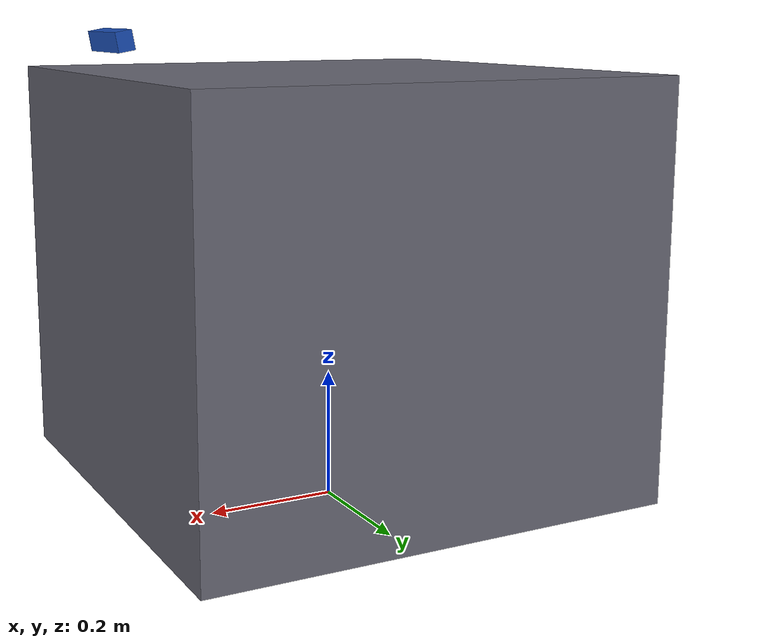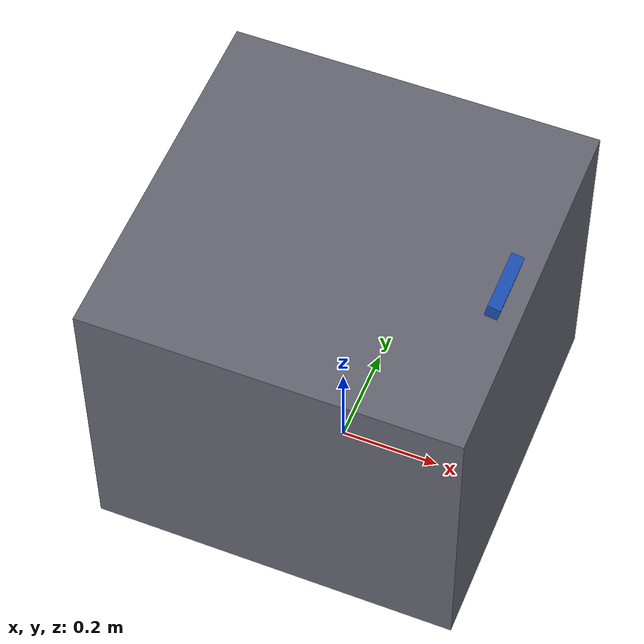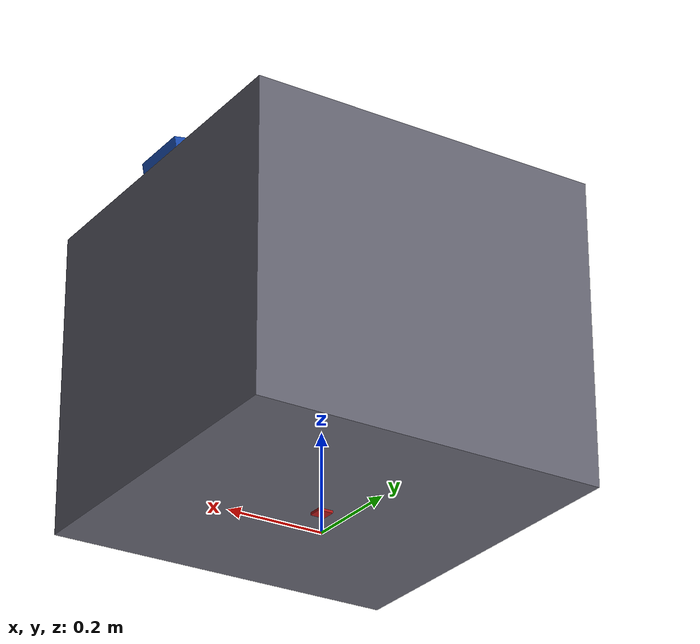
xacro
<?xml version="1.0"?>
<robot name="food_cart" xmlns:xacro="http://ros.org/wiki/xacro">

  <!--  DIMENSIONS — measured on the real cart 2026-05-24 unless TODO  -->

  <!-- Chassis bounding box (meters). LxWxH. Footprint is a 0.725 m square.
       chassis_height is the RIGID body top, NOT the button-presser lift
       (that extends to 1.50 m above floor). -->
  <xacro:property name="chassis_length" value="0.725"/>
  <xacro:property name="chassis_width"  value="0.725"/>
  <xacro:property name="chassis_height" value="0.628"/>  <!-- frame top 67 cm AGL (0.042 + 0.628); camera rides ~4.6 cm above on a riser -->
  <xacro:property name="chassis_mass"   value="20.0"/>   <!-- TODO: measure -->

  <!-- base_link ground clearance: chassis underside off the floor (42 mm).
       The sensor z-heights below are measured from the floor and converted
       to base_link-relative by subtracting this. -->
  <xacro:property name="base_clearance" value="0.042"/>

  <xacro:property name="lidar_xyz" value="0.0 0.0 0.151155"/>
  <xacro:property name="lidar_rpy" value="0 0 3.14159"/>

  <xacro:property name="camera_xyz" value="0.320971 -0.051429 0.674455"/>
  <xacro:property name="camera_rpy" value="0 0.174533 0"/>

  <!-- IMU mount (used for the RoboRIO Pigeon / NavX, NOT the D455 IMU). -->
  <xacro:property name="imu_xyz" value="0.0 0.0 0.0"/>
  <xacro:property name="imu_rpy" value="0 0 0"/>

  <!-- Colors -->
  <material name="cart_grey"><color rgba="0.4 0.4 0.45 1.0"/></material>
  <material name="lidar_black"><color rgba="0.1 0.1 0.1 1.0"/></material>
  <material name="camera_blue"><color rgba="0.1 0.3 0.7 1.0"/></material>
  <material name="imu_red"><color rgba="0.7 0.1 0.1 1.0"/></material>

  <!--  base_footprint  (ground projection of base_link)             -->

  <link name="base_footprint"/>

  <joint name="base_footprint_to_base_link" type="fixed">
    <parent link="base_footprint"/>
    <child link="base_link"/>
    <origin xyz="0 0 ${base_clearance}" rpy="0 0 0"/>
  </joint>

  <!--  base_link  (chassis)                                         -->

  <link name="base_link">
    <visual>
      <origin xyz="0 0 ${chassis_height/2}" rpy="0 0 0"/>
      <geometry>
        <box size="${chassis_length} ${chassis_width} ${chassis_height}"/>
      </geometry>
      <material name="cart_grey"/>
    </visual>
    <collision>
      <origin xyz="0 0 ${chassis_height/2}" rpy="0 0 0"/>
      <geometry>
        <box size="${chassis_length} ${chassis_width} ${chassis_height}"/>
      </geometry>
    </collision>
    <inertial>
      <origin xyz="0 0 ${chassis_height/2}" rpy="0 0 0"/>
      <mass value="${chassis_mass}"/>
      <inertia
        ixx="${chassis_mass*(chassis_width*chassis_width + chassis_height*chassis_height)/12}"
        iyy="${chassis_mass*(chassis_length*chassis_length + chassis_height*chassis_height)/12}"
        izz="${chassis_mass*(chassis_length*chassis_length + chassis_width*chassis_width)/12}"
        ixy="0" ixz="0" iyz="0"/>
    </inertial>
  </link>

  <!--  laser  (Slamtec C1)                                          -->
  <!--  Frame name 'laser' matches rplidar_ros default.              -->

  <joint name="base_to_laser" type="fixed">
    <parent link="base_link"/>
    <child link="laser"/>
    <origin xyz="${lidar_xyz}" rpy="${lidar_rpy}"/>
  </joint>

  <link name="laser">
    <visual>
      <origin xyz="0 0 0.02" rpy="0 0 0"/>
      <geometry>
        <cylinder radius="0.04" length="0.04"/>
      </geometry>
      <material name="lidar_black"/>
    </visual>
  </link>

  <!--  camera_link  (Intel RealSense D455)                          -->
  <!--  The realsense2_camera node publishes its own internal optical-->
  <!--  frames (camera_color_optical_frame, etc.) from camera_link.  -->

  <joint name="base_to_camera" type="fixed">
    <parent link="base_link"/>
    <child link="camera_link"/>
    <origin xyz="${camera_xyz}" rpy="${camera_rpy}"/>
  </joint>

  <link name="camera_link">
    <visual>
      <origin xyz="0 0 0" rpy="0 0 0"/>
      <geometry>
        <box size="0.025 0.124 0.029"/>
      </geometry>
      <material name="camera_blue"/>
    </visual>
  </link>

  <!--  imu_link  (RoboRIO IMU via NT bridge)                        -->

  <joint name="base_to_imu" type="fixed">
    <parent link="base_link"/>
    <child link="imu_link"/>
    <origin xyz="${imu_xyz}" rpy="${imu_rpy}"/>
  </joint>

  <link name="imu_link">
    <visual>
      <origin xyz="0 0 0" rpy="0 0 0"/>
      <geometry>
        <box size="0.03 0.03 0.01"/>
      </geometry>
      <material name="imu_red"/>
    </visual>
  </link>

</robot>
